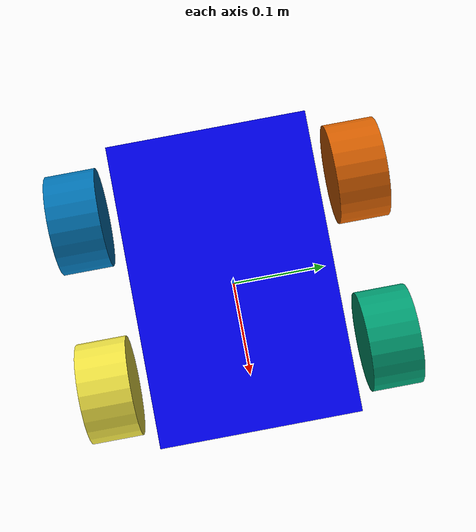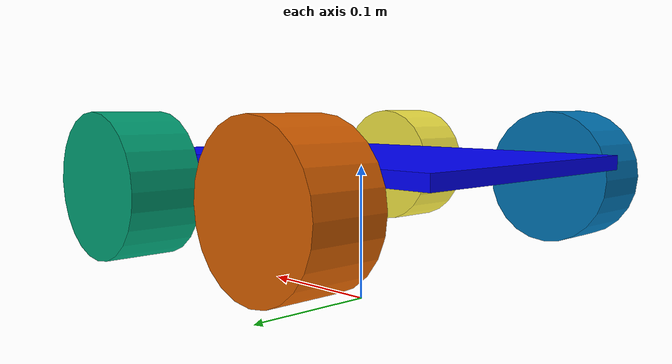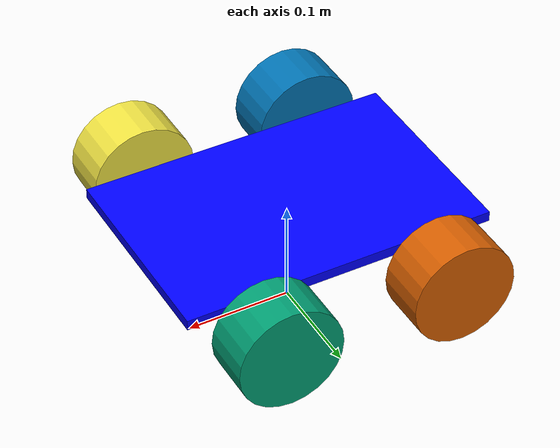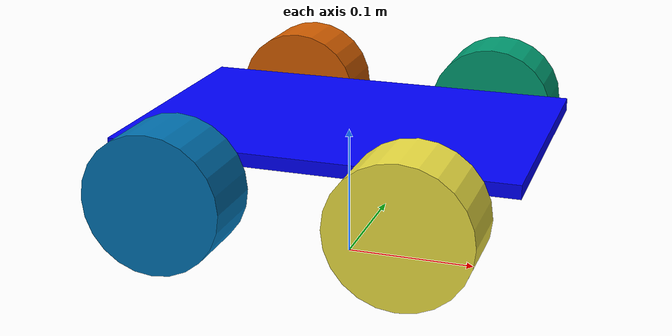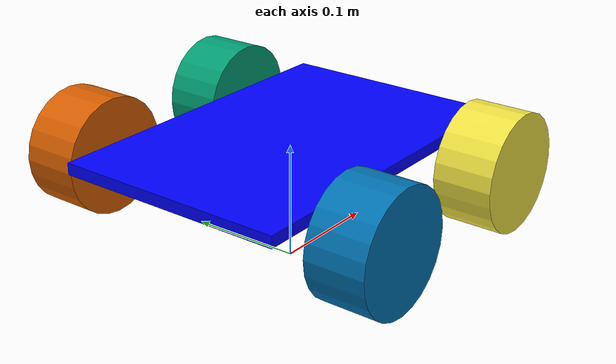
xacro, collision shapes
<?xml version="1.0" ?>
<robot name="omnibot3" xmlns:xacro="http://ros.org/wiki/xacro">

  <!-- ================= ARGUMENTOS ================= -->
  <xacro:arg name="ns" default="r1"/>
  <xacro:arg name="robot_base_color" default="0.0 0.0 1.0 0.95"/> <!-- RGBA -->

  <!-- ================= PROPIEDADES ================= -->
  <xacro:property name="package_name" value="ign_robots_examples"/>
  <xacro:property name="PI" value="3.14159265"/>

  <xacro:property name="L_x" value="0.085"/>
  <xacro:property name="L_y" value="0.14"/>
  <xacro:property name="base_elevation" value="0.08"/>
  <xacro:property name="wheelDiameter" value="0.1"/>
  <xacro:property name="wheelThickness" value="0.05"/>

  <!-- ================= BASE ================= -->
  <link name="$(arg ns)/base_footprint"/>

  <joint name="$(arg ns)/base_joint" type="fixed">
    <parent link="$(arg ns)/base_footprint"/>
    <child link="$(arg ns)/base_link"/>
    <origin xyz="0 0 ${base_elevation}" rpy="0 0 0"/>
  </joint>

  <link name="$(arg ns)/base_link">
    <visual>
      <origin xyz="0 0 0.025" rpy="0 0 0"/>
      <geometry>
        <box size="0.3 0.2 0.005"/>
      </geometry>
      <material name="base_color">
        <color rgba="$(arg robot_base_color)"/>
      </material>
    </visual>
    <collision>
      <origin xyz="0 0 0.025" rpy="0 0 0"/>
      <geometry>
        <box size="0.3 0.2 0.01"/>
      </geometry>
    </collision>
    <inertial>
      <origin xyz="0 0 0" rpy="0 0 0"/>
      <mass value="20.0"/>
      <inertia ixx="2.133" ixy="0" ixz="0" iyy="4.266" iyz="0" izz="5.546"/>
    </inertial>
  </link>

  <!-- ================= WHEELS MACRO ================= -->
  <xacro:macro name="wheel" params="prefix parent_link joint_xyz joint_rpy visual_xyz visual_rpy wheelSide">
    <joint name="${prefix}_joint" type="continuous">
      <parent link="${parent_link}"/>
      <child link="${prefix}_link"/>
      <origin xyz="${joint_xyz}" rpy="${joint_rpy}"/>
      <axis xyz="0 0 1"/>
    </joint>
    <link name="${prefix}_link">
      <visual>
        <origin xyz="${visual_xyz}" rpy="${visual_rpy}"/>
        <geometry>
          <mesh filename="package://${package_name}/meshes/${wheelSide}_mecanum_wheel.dae" scale="1.0 0.8 1.0"/>
        </geometry>
      </visual>
      <collision>
        <origin xyz="0 0 0" rpy="0 0 0"/>
        <geometry>
          <cylinder radius="${wheelDiameter/2}" length="${wheelThickness}"/>
        </geometry>
      </collision>
      <inertial>
        <origin xyz="0 0 0"/>
        <mass value="0.1"/>
        <inertia ixx="6.1e-5" ixy="0" ixz="0" iyy="6.1e-5" iyz="0" izz="6.1e-5"/>
      </inertial>
    </link>
  </xacro:macro>

  <!-- ================= INSTANTIATE WHEELS ================= -->
  <xacro:wheel prefix="leftfront" parent_link="$(arg ns)/base_link" joint_xyz="${L_x} ${L_y} 0.01"
    joint_rpy="${-PI/2} 0 0" visual_xyz="0 0 0" visual_rpy="${-PI/2} 0 0" wheelSide="left"/>
  <xacro:wheel prefix="rightfront" parent_link="$(arg ns)/base_link" joint_xyz="${L_x} ${-L_y} 0.01"
    joint_rpy="${-PI/2} 0 0" visual_xyz="0 0 0" visual_rpy="${-PI/2} 0 0" wheelSide="right"/>
  <xacro:wheel prefix="rightback" parent_link="$(arg ns)/base_link" joint_xyz="${-L_x} ${-L_y} 0.01"
    joint_rpy="${-PI/2} 0 0" visual_xyz="0 0 0" visual_rpy="${-PI/2} 0 0" wheelSide="left"/>
  <xacro:wheel prefix="leftback" parent_link="$(arg ns)/base_link" joint_xyz="${-L_x} ${L_y} 0.01"
    joint_rpy="${-PI/2} 0 0" visual_xyz="0 0 0" visual_rpy="${-PI/2} 0 0" wheelSide="right"/>

  <!-- ================= SENSORS ================= -->
  <!-- IMU -->
  <gazebo reference="$(arg ns)/base_link">
    <sensor name="imu_sensor" type="imu">
      <ignition_frame_id>$(arg ns)/base_link</ignition_frame_id>
      <always_on>1</always_on>
      <update_rate>50</update_rate>
      <visualize>false</visualize>
      <topic>$(arg ns)/imu</topic>
      <imu>
        <enable_orientation>1</enable_orientation>
      </imu>
    </sensor>
  </gazebo>

  <!-- LIDAR -->
  <joint name="$(arg ns)/lidar_joint" type="fixed">
    <parent link="$(arg ns)/base_link"/>
    <child link="$(arg ns)/lidar_link"/>
    <origin xyz="0 0 0.07" rpy="0 0 0"/>
  </joint>
  <link name="$(arg ns)/lidar_link"/>
  <gazebo reference="$(arg ns)/lidar_link">
    <sensor name="gpu_lidar" type="gpu_lidar">
      <ignition_frame_id>$(arg ns)/lidar_link</ignition_frame_id>
      <update_rate>10</update_rate>
      <ray>
        <scan>
          <horizontal>
            <samples>360</samples>
            <resolution>1</resolution>
            <min_angle>${-PI}</min_angle>
            <max_angle>${PI}</max_angle>
          </horizontal>
          <vertical>
            <samples>16</samples>
            <resolution>1</resolution>
            <min_angle>-0.261799</min_angle>
            <max_angle>0.261799</max_angle>
          </vertical>
        </scan>
        <range>
          <min>0.1</min>
          <max>20.0</max>
        </range>
      </ray>
      <always_on>1</always_on>
      <visualize>false</visualize>
      <topic>$(arg ns)/lidar</topic>
    </sensor>
  </gazebo>

  <!-- RGB CAMERA -->
  <joint name="$(arg ns)/camera_joint" type="fixed">
    <parent link="$(arg ns)/base_link"/>
    <child link="$(arg ns)/camera_frame"/>
    <origin xyz="0.1 0 0.08" rpy="0 0 0"/>
  </joint>
  <link name="$(arg ns)/camera_frame"/>
  <gazebo reference="$(arg ns)/camera_frame">
    <sensor name="camera" type="camera">
      <ignition_frame_id>$(arg ns)/camera_frame</ignition_frame_id>
      <always_on>1</always_on>
      <update_rate>30</update_rate>
      <visualize>true</visualize>
      <topic>$(arg ns)/camera/image_raw</topic>
    </sensor>
  </gazebo>

  <!-- RGBD CAMERA -->
  <joint name="$(arg ns)/rgbd_camera_joint" type="fixed">
    <parent link="$(arg ns)/base_link"/>
    <child link="$(arg ns)/rgbd_camera_frame"/>
    <origin xyz="0.05 0 0.06" rpy="0 ${-PI/4} 0"/>
  </joint>
  <link name="$(arg ns)/rgbd_camera_frame"/>
  <gazebo reference="$(arg ns)/rgbd_camera_frame">
    <sensor name="rgbd_camera" type="rgbd_camera">
      <ignition_frame_id>$(arg ns)/rgbd_camera_frame</ignition_frame_id>
      <always_on>1</always_on>
      <update_rate>10</update_rate>
      <visualize>false</visualize>
      <topic>$(arg ns)/depth_camera</topic>
    </sensor>
  </gazebo>

  <!-- ================= GAZEBO PLUGINS ================= -->
  <gazebo>
    <plugin filename="libignition-gazebo-mecanum-drive-system.so" name="ignition::gazebo::systems::MecanumDrive">
      <update_rate>20</update_rate>
      <front_left_joint>leftfront_joint</front_left_joint>
      <front_right_joint>rightfront_joint</front_right_joint>
      <back_left_joint>leftback_joint</back_left_joint>
      <back_right_joint>rightback_joint</back_right_joint>
      <wheel_separation>${L_x}</wheel_separation>
      <wheelbase>${L_y}</wheelbase>
      <wheel_radius>${wheelDiameter/2}</wheel_radius>
      <min_acceleration>-5</min_acceleration>
      <max_acceleration>5</max_acceleration>
    </plugin>

    <plugin filename="libignition-gazebo-odometry-publisher-system.so" name="ignition::gazebo::systems::OdometryPublisher">
      <dimensions>2</dimensions>
      <robot_base_frame>$(arg ns)/base_link</robot_base_frame>
    </plugin>

     <plugin
      filename="gz-sim-joint-state-publisher-system"
      name="gz::sim::systems::JointStatePublisher">
    </plugin>

  </gazebo>

</robot>
